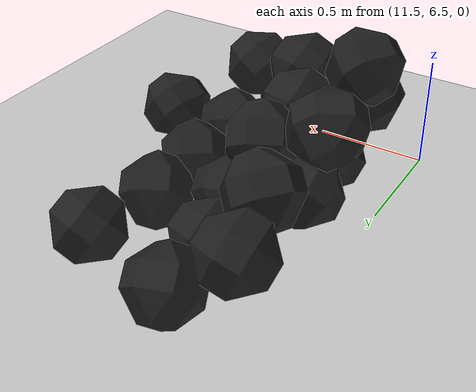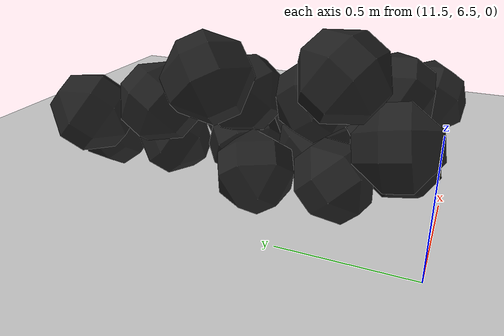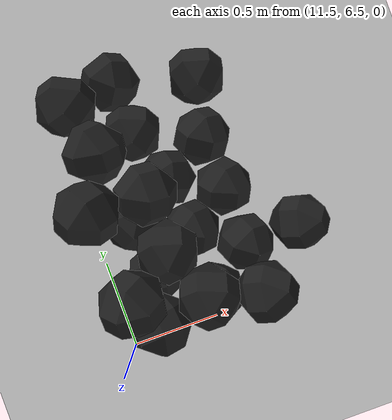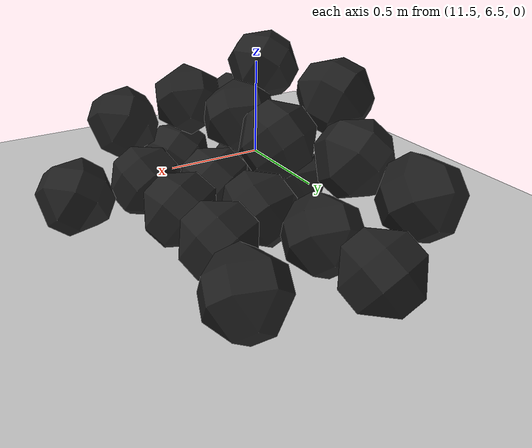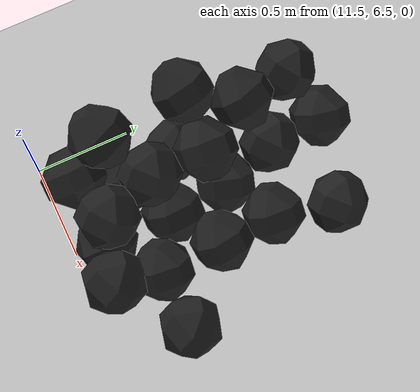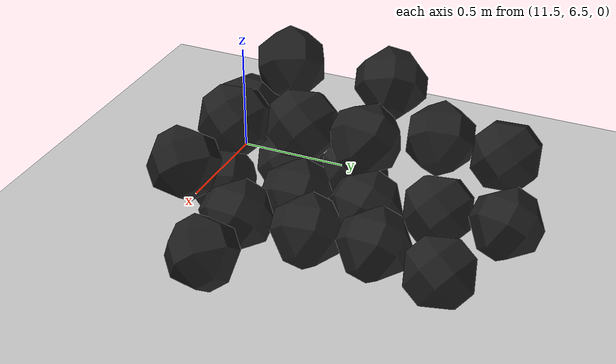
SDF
<sdf version="1.6">
 <world name="default">
  <model name="ground_plane">
   <static>1</static>
   <link name="link">
    <collision name="collision">
     <geometry><plane><normal>0 0 1</normal><size>100 100</size></plane></geometry>
     <surface><friction><ode><mu>100</mu><mu2>50</mu2></ode></friction></surface>
    </collision>
    <visual name="visual">
     <cast_shadows>0</cast_shadows>
     <geometry><plane><normal>0 0 1</normal><size>100 100</size></plane></geometry>
     <material>
      <script><uri>file://media/materials/scripts/gazebo.material</uri><name>Gazebo/Grey</name></script>
     </material>
    </visual>
   </link>
  </model>
  <model name="haoduomiantiaa_4">
   <link name="link_0">
    <inertial>
     <mass>0.2</mass>
     <inertia>
      <ixx>0.166667</ixx>
      <ixy>0</ixy>
      <ixz>0</ixz>
      <iyy>0.166667</iyy>
      <iyz>0</iyz>
      <izz>0.166667</izz>
     </inertia>
    </inertial>
    <visual name="visual">
     <geometry>
      <mesh>
       <uri>/home/oliver/catkin_ws/src/pudong_gazebo/world/stl/haoduomianti.stl</uri>
       <scale>1 1 1</scale>
      </mesh>
     </geometry>
     <material>
      <lighting>1</lighting>
      <script><uri>file://media/materials/scripts/gazebo.material</uri><name>Gazebo/Black</name></script>
      <shader type="pixel"><normal_map>__default__</normal_map></shader>
      <ambient>0.3 0.3 0.3 1</ambient>
      <diffuse>0.7 0.7 0.7 1</diffuse>
      <specular>0.01 0.01 0.01 1</specular>
      <emissive>0 0 0 1</emissive>
     </material>
    </visual>
    <collision name="collision">
     <geometry>
      <mesh>
       <uri>/home/oliver/catkin_ws/src/pudong_gazebo/world/stl/haoduomianti.stl</uri>
       <scale>1 1 1</scale>
      </mesh>
     </geometry>
     <surface>
      <friction>
       <ode><mu>1</mu><mu2>1</mu2><fdir1>0 0 0</fdir1><slip1>0</slip1><slip2>0</slip2></ode>
       <torsional>
        <coefficient>1</coefficient>
        <patch_radius>0</patch_radius>
        <surface_radius>0</surface_radius>
        <use_patch_radius>1</use_patch_radius>
        <ode><slip>0</slip></ode>
       </torsional>
      </friction>
      <bounce><restitution_coefficient>0</restitution_coefficient><threshold>1e+06</threshold></bounce>
      <contact>
       <collide_without_contact>0</collide_without_contact>
       <collide_without_contact_bitmask>1</collide_without_contact_bitmask>
       <collide_bitmask>1</collide_bitmask>
       <ode>
        <soft_cfm>0</soft_cfm>
        <soft_erp>0.2</soft_erp>
        <kp>1e+13</kp>
        <kd>1</kd>
        <max_vel>0.01</max_vel>
        <min_depth>0</min_depth>
       </ode>
       <bullet>
        <split_impulse>1</split_impulse>
        <split_impulse_penetration_threshold>-0.01</split_impulse_penetration_threshold>
        <soft_cfm>0</soft_cfm>
        <soft_erp>0.2</soft_erp>
        <kp>1e+13</kp>
        <kd>1</kd>
       </bullet>
      </contact>
     </surface>
    </collision>
   </link>
   <static>0</static>
   <pose>11.7408 7.17614 -0.115424 0.785214 -0.614577 0.474893</pose>
  </model>
  <model name="haoduomiantiaa_5">
   <link name="link_0">
    <inertial>
     <mass>0.2</mass>
     <inertia>
      <ixx>0.166667</ixx>
      <ixy>0</ixy>
      <ixz>0</ixz>
      <iyy>0.166667</iyy>
      <iyz>0</iyz>
      <izz>0.166667</izz>
     </inertia>
    </inertial>
    <visual name="visual">
     <geometry>
      <mesh>
       <uri>/home/oliver/catkin_ws/src/pudong_gazebo/world/stl/haoduomianti.stl</uri>
       <scale>1 1 1</scale>
      </mesh>
     </geometry>
     <material>
      <lighting>1</lighting>
      <script><uri>file://media/materials/scripts/gazebo.material</uri><name>Gazebo/Black</name></script>
      <shader type="pixel"><normal_map>__default__</normal_map></shader>
      <ambient>0.3 0.3 0.3 1</ambient>
      <diffuse>0.7 0.7 0.7 1</diffuse>
      <specular>0.01 0.01 0.01 1</specular>
      <emissive>0 0 0 1</emissive>
     </material>
    </visual>
    <collision name="collision">
     <geometry>
      <mesh>
       <uri>/home/oliver/catkin_ws/src/pudong_gazebo/world/stl/haoduomianti.stl</uri>
       <scale>1 1 1</scale>
      </mesh>
     </geometry>
     <surface>
      <friction>
       <ode><mu>1</mu><mu2>1</mu2><fdir1>0 0 0</fdir1><slip1>0</slip1><slip2>0</slip2></ode>
       <torsional>
        <coefficient>1</coefficient>
        <patch_radius>0</patch_radius>
        <surface_radius>0</surface_radius>
        <use_patch_radius>1</use_patch_radius>
        <ode><slip>0</slip></ode>
       </torsional>
      </friction>
      <bounce><restitution_coefficient>0</restitution_coefficient><threshold>1e+06</threshold></bounce>
      <contact>
       <collide_without_contact>0</collide_without_contact>
       <collide_without_contact_bitmask>1</collide_without_contact_bitmask>
       <collide_bitmask>1</collide_bitmask>
       <ode>
        <soft_cfm>0</soft_cfm>
        <soft_erp>0.2</soft_erp>
        <kp>1e+13</kp>
        <kd>1</kd>
        <max_vel>0.01</max_vel>
        <min_depth>0</min_depth>
       </ode>
       <bullet>
        <split_impulse>1</split_impulse>
        <split_impulse_penetration_threshold>-0.01</split_impulse_penetration_threshold>
        <soft_cfm>0</soft_cfm>
        <soft_erp>0.2</soft_erp>
        <kp>1e+13</kp>
        <kd>1</kd>
       </bullet>
      </contact>
     </surface>
    </collision>
   </link>
   <static>0</static>
   <pose>11.6442 6.91591 -0.072486 0.025367 -0.785197 -1.84865</pose>
  </model>
  <model name="haoduomiantiaa_16">
   <link name="link_0">
    <inertial>
     <mass>0.2</mass>
     <inertia>
      <ixx>0.166667</ixx>
      <ixy>0</ixy>
      <ixz>0</ixz>
      <iyy>0.166667</iyy>
      <iyz>0</iyz>
      <izz>0.166667</izz>
     </inertia>
    </inertial>
    <visual name="visual">
     <geometry>
      <mesh>
       <uri>/home/oliver/catkin_ws/src/pudong_gazebo/world/stl/haoduomianti.stl</uri>
       <scale>1 1 1</scale>
      </mesh>
     </geometry>
     <material>
      <lighting>1</lighting>
      <script><uri>file://media/materials/scripts/gazebo.material</uri><name>Gazebo/Black</name></script>
      <shader type="pixel"><normal_map>__default__</normal_map></shader>
      <ambient>0.3 0.3 0.3 1</ambient>
      <diffuse>0.7 0.7 0.7 1</diffuse>
      <specular>0.01 0.01 0.01 1</specular>
      <emissive>0 0 0 1</emissive>
     </material>
    </visual>
    <collision name="collision">
     <geometry>
      <mesh>
       <uri>/home/oliver/catkin_ws/src/pudong_gazebo/world/stl/haoduomianti.stl</uri>
       <scale>1 1 1</scale>
      </mesh>
     </geometry>
     <surface>
      <friction>
       <ode><mu>1</mu><mu2>1</mu2><fdir1>0 0 0</fdir1><slip1>0</slip1><slip2>0</slip2></ode>
       <torsional>
        <coefficient>1</coefficient>
        <patch_radius>0</patch_radius>
        <surface_radius>0</surface_radius>
        <use_patch_radius>1</use_patch_radius>
        <ode><slip>0</slip></ode>
       </torsional>
      </friction>
      <bounce><restitution_coefficient>0</restitution_coefficient><threshold>1e+06</threshold></bounce>
      <contact>
       <collide_without_contact>0</collide_without_contact>
       <collide_without_contact_bitmask>1</collide_without_contact_bitmask>
       <collide_bitmask>1</collide_bitmask>
       <ode>
        <soft_cfm>0</soft_cfm>
        <soft_erp>0.2</soft_erp>
        <kp>1e+13</kp>
        <kd>1</kd>
        <max_vel>0.01</max_vel>
        <min_depth>0</min_depth>
       </ode>
       <bullet>
        <split_impulse>1</split_impulse>
        <split_impulse_penetration_threshold>-0.01</split_impulse_penetration_threshold>
        <soft_cfm>0</soft_cfm>
        <soft_erp>0.2</soft_erp>
        <kp>1e+13</kp>
        <kd>1</kd>
       </bullet>
      </contact>
     </surface>
    </collision>
   </link>
   <static>0</static>
   <pose>11.7861 6.77265 0.121639 0.164646 -0.433724 -3.10475</pose>
  </model>
  <model name="haoduomiantiaa_22">
   <link name="link_0">
    <inertial>
     <mass>0.2</mass>
     <inertia>
      <ixx>0.166667</ixx>
      <ixy>0</ixy>
      <ixz>0</ixz>
      <iyy>0.166667</iyy>
      <iyz>0</iyz>
      <izz>0.166667</izz>
     </inertia>
    </inertial>
    <visual name="visual">
     <geometry>
      <mesh>
       <uri>/home/oliver/catkin_ws/src/pudong_gazebo/world/stl/haoduomianti.stl</uri>
       <scale>1 1 1</scale>
      </mesh>
     </geometry>
     <material>
      <lighting>1</lighting>
      <script><uri>file://media/materials/scripts/gazebo.material</uri><name>Gazebo/Black</name></script>
      <shader type="pixel"><normal_map>__default__</normal_map></shader>
      <ambient>0.3 0.3 0.3 1</ambient>
      <diffuse>0.7 0.7 0.7 1</diffuse>
      <specular>0.01 0.01 0.01 1</specular>
      <emissive>0 0 0 1</emissive>
     </material>
    </visual>
    <collision name="collision">
     <geometry>
      <mesh>
       <uri>/home/oliver/catkin_ws/src/pudong_gazebo/world/stl/haoduomianti.stl</uri>
       <scale>1 1 1</scale>
      </mesh>
     </geometry>
     <surface>
      <friction>
       <ode><mu>1</mu><mu2>1</mu2><fdir1>0 0 0</fdir1><slip1>0</slip1><slip2>0</slip2></ode>
       <torsional>
        <coefficient>1</coefficient>
        <patch_radius>0</patch_radius>
        <surface_radius>0</surface_radius>
        <use_patch_radius>1</use_patch_radius>
        <ode><slip>0</slip></ode>
       </torsional>
      </friction>
      <bounce><restitution_coefficient>0</restitution_coefficient><threshold>1e+06</threshold></bounce>
      <contact>
       <collide_without_contact>0</collide_without_contact>
       <collide_without_contact_bitmask>1</collide_without_contact_bitmask>
       <collide_bitmask>1</collide_bitmask>
       <ode>
        <soft_cfm>0</soft_cfm>
        <soft_erp>0.2</soft_erp>
        <kp>1e+13</kp>
        <kd>1</kd>
        <max_vel>0.01</max_vel>
        <min_depth>0</min_depth>
       </ode>
       <bullet>
        <split_impulse>1</split_impulse>
        <split_impulse_penetration_threshold>-0.01</split_impulse_penetration_threshold>
        <soft_cfm>0</soft_cfm>
        <soft_erp>0.2</soft_erp>
        <kp>1e+13</kp>
        <kd>1</kd>
       </bullet>
      </contact>
     </surface>
    </collision>
   </link>
   <static>0</static>
   <pose>12.0454 6.66537 -0.115487 0.785401 -0.615459 -0.720537</pose>
  </model>
  <model name="haoduomiantiaa_24">
   <link name="link_0">
    <inertial>
     <mass>0.2</mass>
     <inertia>
      <ixx>0.166667</ixx>
      <ixy>0</ixy>
      <ixz>0</ixz>
      <iyy>0.166667</iyy>
      <iyz>0</iyz>
      <izz>0.166667</izz>
     </inertia>
    </inertial>
    <visual name="visual">
     <geometry>
      <mesh>
       <uri>/home/oliver/catkin_ws/src/pudong_gazebo/world/stl/haoduomianti.stl</uri>
       <scale>1 1 1</scale>
      </mesh>
     </geometry>
     <material>
      <lighting>1</lighting>
      <script><uri>file://media/materials/scripts/gazebo.material</uri><name>Gazebo/Black</name></script>
      <shader type="pixel"><normal_map>__default__</normal_map></shader>
      <ambient>0.3 0.3 0.3 1</ambient>
      <diffuse>0.7 0.7 0.7 1</diffuse>
      <specular>0.01 0.01 0.01 1</specular>
      <emissive>0 0 0 1</emissive>
     </material>
    </visual>
    <collision name="collision">
     <geometry>
      <mesh>
       <uri>/home/oliver/catkin_ws/src/pudong_gazebo/world/stl/haoduomianti.stl</uri>
       <scale>1 1 1</scale>
      </mesh>
     </geometry>
     <surface>
      <friction>
       <ode><mu>1</mu><mu2>1</mu2><fdir1>0 0 0</fdir1><slip1>0</slip1><slip2>0</slip2></ode>
       <torsional>
        <coefficient>1</coefficient>
        <patch_radius>0</patch_radius>
        <surface_radius>0</surface_radius>
        <use_patch_radius>1</use_patch_radius>
        <ode><slip>0</slip></ode>
       </torsional>
      </friction>
      <bounce><restitution_coefficient>0</restitution_coefficient><threshold>1e+06</threshold></bounce>
      <contact>
       <collide_without_contact>0</collide_without_contact>
       <collide_without_contact_bitmask>1</collide_without_contact_bitmask>
       <collide_bitmask>1</collide_bitmask>
       <ode>
        <soft_cfm>0</soft_cfm>
        <soft_erp>0.2</soft_erp>
        <kp>1e+13</kp>
        <kd>1</kd>
        <max_vel>0.01</max_vel>
        <min_depth>0</min_depth>
       </ode>
       <bullet>
        <split_impulse>1</split_impulse>
        <split_impulse_penetration_threshold>-0.01</split_impulse_penetration_threshold>
        <soft_cfm>0</soft_cfm>
        <soft_erp>0.2</soft_erp>
        <kp>1e+13</kp>
        <kd>1</kd>
       </bullet>
      </contact>
     </surface>
    </collision>
   </link>
   <static>0</static>
   <pose>12.2888 6.86401 -0.118097 0.783884 -0.616 -1.1434</pose>
  </model>
  <model name="haoduomiantiaa_44">
   <link name="link_0">
    <inertial>
     <mass>0.2</mass>
     <inertia>
      <ixx>0.166667</ixx>
      <ixy>0</ixy>
      <ixz>0</ixz>
      <iyy>0.166667</iyy>
      <iyz>0</iyz>
      <izz>0.166667</izz>
     </inertia>
    </inertial>
    <visual name="visual">
     <geometry>
      <mesh>
       <uri>/home/oliver/catkin_ws/src/pudong_gazebo/world/stl/haoduomianti.stl</uri>
       <scale>1 1 1</scale>
      </mesh>
     </geometry>
     <material>
      <lighting>1</lighting>
      <script><uri>file://media/materials/scripts/gazebo.material</uri><name>Gazebo/Black</name></script>
      <shader type="pixel"><normal_map>__default__</normal_map></shader>
      <ambient>0.3 0.3 0.3 1</ambient>
      <diffuse>0.7 0.7 0.7 1</diffuse>
      <specular>0.01 0.01 0.01 1</specular>
      <emissive>0 0 0 1</emissive>
     </material>
    </visual>
    <collision name="collision">
     <geometry>
      <mesh>
       <uri>/home/oliver/catkin_ws/src/pudong_gazebo/world/stl/haoduomianti.stl</uri>
       <scale>1 1 1</scale>
      </mesh>
     </geometry>
     <surface>
      <friction>
       <ode><mu>1</mu><mu2>1</mu2><fdir1>0 0 0</fdir1><slip1>0</slip1><slip2>0</slip2></ode>
       <torsional>
        <coefficient>1</coefficient>
        <patch_radius>0</patch_radius>
        <surface_radius>0</surface_radius>
        <use_patch_radius>1</use_patch_radius>
        <ode><slip>0</slip></ode>
       </torsional>
      </friction>
      <bounce><restitution_coefficient>0</restitution_coefficient><threshold>1e+06</threshold></bounce>
      <contact>
       <collide_without_contact>0</collide_without_contact>
       <collide_without_contact_bitmask>1</collide_without_contact_bitmask>
       <collide_bitmask>1</collide_bitmask>
       <ode>
        <soft_cfm>0</soft_cfm>
        <soft_erp>0.2</soft_erp>
        <kp>1e+13</kp>
        <kd>1</kd>
        <max_vel>0.01</max_vel>
        <min_depth>0</min_depth>
       </ode>
       <bullet>
        <split_impulse>1</split_impulse>
        <split_impulse_penetration_threshold>-0.01</split_impulse_penetration_threshold>
        <soft_cfm>0</soft_cfm>
        <soft_erp>0.2</soft_erp>
        <kp>1e+13</kp>
        <kd>1</kd>
       </bullet>
      </contact>
     </surface>
    </collision>
   </link>
   <static>0</static>
   <pose>12.2616 7.48922 -0.115391 0.785785 -0.615727 3.09158</pose>
  </model>
  <model name="haoduomiantiaa_50">
   <link name="link_0">
    <inertial>
     <mass>0.2</mass>
     <inertia>
      <ixx>0.166667</ixx>
      <ixy>0</ixy>
      <ixz>0</ixz>
      <iyy>0.166667</iyy>
      <iyz>0</iyz>
      <izz>0.166667</izz>
     </inertia>
    </inertial>
    <visual name="visual">
     <geometry>
      <mesh>
       <uri>/home/oliver/catkin_ws/src/pudong_gazebo/world/stl/haoduomianti.stl</uri>
       <scale>1 1 1</scale>
      </mesh>
     </geometry>
     <material>
      <lighting>1</lighting>
      <script><uri>file://media/materials/scripts/gazebo.material</uri><name>Gazebo/Black</name></script>
      <shader type="pixel"><normal_map>__default__</normal_map></shader>
      <ambient>0.3 0.3 0.3 1</ambient>
      <diffuse>0.7 0.7 0.7 1</diffuse>
      <specular>0.01 0.01 0.01 1</specular>
      <emissive>0 0 0 1</emissive>
     </material>
    </visual>
    <collision name="collision">
     <geometry>
      <mesh>
       <uri>/home/oliver/catkin_ws/src/pudong_gazebo/world/stl/haoduomianti.stl</uri>
       <scale>1 1 1</scale>
      </mesh>
     </geometry>
     <surface>
      <friction>
       <ode><mu>1</mu><mu2>1</mu2><fdir1>0 0 0</fdir1><slip1>0</slip1><slip2>0</slip2></ode>
       <torsional>
        <coefficient>1</coefficient>
        <patch_radius>0</patch_radius>
        <surface_radius>0</surface_radius>
        <use_patch_radius>1</use_patch_radius>
        <ode><slip>0</slip></ode>
       </torsional>
      </friction>
      <bounce><restitution_coefficient>0</restitution_coefficient><threshold>1e+06</threshold></bounce>
      <contact>
       <collide_without_contact>0</collide_without_contact>
       <collide_without_contact_bitmask>1</collide_without_contact_bitmask>
       <collide_bitmask>1</collide_bitmask>
       <ode>
        <soft_cfm>0</soft_cfm>
        <soft_erp>0.2</soft_erp>
        <kp>1e+13</kp>
        <kd>1</kd>
        <max_vel>0.01</max_vel>
        <min_depth>0</min_depth>
       </ode>
       <bullet>
        <split_impulse>1</split_impulse>
        <split_impulse_penetration_threshold>-0.01</split_impulse_penetration_threshold>
        <soft_cfm>0</soft_cfm>
        <soft_erp>0.2</soft_erp>
        <kp>1e+13</kp>
        <kd>1</kd>
       </bullet>
      </contact>
     </surface>
    </collision>
   </link>
   <static>0</static>
   <pose>11.7348 7.54176 0.127448 0.687983 -0.53336 1.4309</pose>
  </model>
  <model name="haoduomiantiaa_51">
   <link name="link_0">
    <inertial>
     <mass>0.2</mass>
     <inertia>
      <ixx>0.166667</ixx>
      <ixy>0</ixy>
      <ixz>0</ixz>
      <iyy>0.166667</iyy>
      <iyz>0</iyz>
      <izz>0.166667</izz>
     </inertia>
    </inertial>
    <visual name="visual">
     <geometry>
      <mesh>
       <uri>/home/oliver/catkin_ws/src/pudong_gazebo/world/stl/haoduomianti.stl</uri>
       <scale>1 1 1</scale>
      </mesh>
     </geometry>
     <material>
      <lighting>1</lighting>
      <script><uri>file://media/materials/scripts/gazebo.material</uri><name>Gazebo/Black</name></script>
      <shader type="pixel"><normal_map>__default__</normal_map></shader>
      <ambient>0.3 0.3 0.3 1</ambient>
      <diffuse>0.7 0.7 0.7 1</diffuse>
      <specular>0.01 0.01 0.01 1</specular>
      <emissive>0 0 0 1</emissive>
     </material>
    </visual>
    <collision name="collision">
     <geometry>
      <mesh>
       <uri>/home/oliver/catkin_ws/src/pudong_gazebo/world/stl/haoduomianti.stl</uri>
       <scale>1 1 1</scale>
      </mesh>
     </geometry>
     <surface>
      <friction>
       <ode><mu>1</mu><mu2>1</mu2><fdir1>0 0 0</fdir1><slip1>0</slip1><slip2>0</slip2></ode>
       <torsional>
        <coefficient>1</coefficient>
        <patch_radius>0</patch_radius>
        <surface_radius>0</surface_radius>
        <use_patch_radius>1</use_patch_radius>
        <ode><slip>0</slip></ode>
       </torsional>
      </friction>
      <bounce><restitution_coefficient>0</restitution_coefficient><threshold>1e+06</threshold></bounce>
      <contact>
       <collide_without_contact>0</collide_without_contact>
       <collide_without_contact_bitmask>1</collide_without_contact_bitmask>
       <collide_bitmask>1</collide_bitmask>
       <ode>
        <soft_cfm>0</soft_cfm>
        <soft_erp>0.2</soft_erp>
        <kp>1e+13</kp>
        <kd>1</kd>
        <max_vel>0.01</max_vel>
        <min_depth>0</min_depth>
       </ode>
       <bullet>
        <split_impulse>1</split_impulse>
        <split_impulse_penetration_threshold>-0.01</split_impulse_penetration_threshold>
        <soft_cfm>0</soft_cfm>
        <soft_erp>0.2</soft_erp>
        <kp>1e+13</kp>
        <kd>1</kd>
       </bullet>
      </contact>
     </surface>
    </collision>
   </link>
   <static>0</static>
   <pose>12.0287 7.01456 -0.112279 0.785731 -0.544033 1.11328</pose>
  </model>
  <model name="haoduomiantiaa_55">
   <link name="link_0">
    <inertial>
     <mass>0.2</mass>
     <inertia>
      <ixx>0.166667</ixx>
      <ixy>0</ixy>
      <ixz>0</ixz>
      <iyy>0.166667</iyy>
      <iyz>0</iyz>
      <izz>0.166667</izz>
     </inertia>
    </inertial>
    <visual name="visual">
     <geometry>
      <mesh>
       <uri>/home/oliver/catkin_ws/src/pudong_gazebo/world/stl/haoduomianti.stl</uri>
       <scale>1 1 1</scale>
      </mesh>
     </geometry>
     <material>
      <lighting>1</lighting>
      <script><uri>file://media/materials/scripts/gazebo.material</uri><name>Gazebo/Black</name></script>
      <shader type="pixel"><normal_map>__default__</normal_map></shader>
      <ambient>0.3 0.3 0.3 1</ambient>
      <diffuse>0.7 0.7 0.7 1</diffuse>
      <specular>0.01 0.01 0.01 1</specular>
      <emissive>0 0 0 1</emissive>
     </material>
    </visual>
    <collision name="collision">
     <geometry>
      <mesh>
       <uri>/home/oliver/catkin_ws/src/pudong_gazebo/world/stl/haoduomianti.stl</uri>
       <scale>1 1 1</scale>
      </mesh>
     </geometry>
     <surface>
      <friction>
       <ode><mu>1</mu><mu2>1</mu2><fdir1>0 0 0</fdir1><slip1>0</slip1><slip2>0</slip2></ode>
       <torsional>
        <coefficient>1</coefficient>
        <patch_radius>0</patch_radius>
        <surface_radius>0</surface_radius>
        <use_patch_radius>1</use_patch_radius>
        <ode><slip>0</slip></ode>
       </torsional>
      </friction>
      <bounce><restitution_coefficient>0</restitution_coefficient><threshold>1e+06</threshold></bounce>
      <contact>
       <collide_without_contact>0</collide_without_contact>
       <collide_without_contact_bitmask>1</collide_without_contact_bitmask>
       <collide_bitmask>1</collide_bitmask>
       <ode>
        <soft_cfm>0</soft_cfm>
        <soft_erp>0.2</soft_erp>
        <kp>1e+13</kp>
        <kd>1</kd>
        <max_vel>0.01</max_vel>
        <min_depth>0</min_depth>
       </ode>
       <bullet>
        <split_impulse>1</split_impulse>
        <split_impulse_penetration_threshold>-0.01</split_impulse_penetration_threshold>
        <soft_cfm>0</soft_cfm>
        <soft_erp>0.2</soft_erp>
        <kp>1e+13</kp>
        <kd>1</kd>
       </bullet>
      </contact>
     </surface>
    </collision>
   </link>
   <static>0</static>
   <pose>12.3466 7.81081 -0.115361 0.786585 -0.614487 2.33295</pose>
  </model>
  <model name="haoduomiantiaa_62">
   <link name="link_0">
    <inertial>
     <mass>0.2</mass>
     <inertia>
      <ixx>0.166667</ixx>
      <ixy>0</ixy>
      <ixz>0</ixz>
      <iyy>0.166667</iyy>
      <iyz>0</iyz>
      <izz>0.166667</izz>
     </inertia>
    </inertial>
    <visual name="visual">
     <geometry>
      <mesh>
       <uri>/home/oliver/catkin_ws/src/pudong_gazebo/world/stl/haoduomianti.stl</uri>
       <scale>1 1 1</scale>
      </mesh>
     </geometry>
     <material>
      <lighting>1</lighting>
      <script><uri>file://media/materials/scripts/gazebo.material</uri><name>Gazebo/Black</name></script>
      <shader type="pixel"><normal_map>__default__</normal_map></shader>
      <ambient>0.3 0.3 0.3 1</ambient>
      <diffuse>0.7 0.7 0.7 1</diffuse>
      <specular>0.01 0.01 0.01 1</specular>
      <emissive>0 0 0 1</emissive>
     </material>
    </visual>
    <collision name="collision">
     <geometry>
      <mesh>
       <uri>/home/oliver/catkin_ws/src/pudong_gazebo/world/stl/haoduomianti.stl</uri>
       <scale>1 1 1</scale>
      </mesh>
     </geometry>
     <surface>
      <friction>
       <ode><mu>1</mu><mu2>1</mu2><fdir1>0 0 0</fdir1><slip1>0</slip1><slip2>0</slip2></ode>
       <torsional>
        <coefficient>1</coefficient>
        <patch_radius>0</patch_radius>
        <surface_radius>0</surface_radius>
        <use_patch_radius>1</use_patch_radius>
        <ode><slip>0</slip></ode>
       </torsional>
      </friction>
      <bounce><restitution_coefficient>0</restitution_coefficient><threshold>1e+06</threshold></bounce>
      <contact>
       <collide_without_contact>0</collide_without_contact>
       <collide_without_contact_bitmask>1</collide_without_contact_bitmask>
       <collide_bitmask>1</collide_bitmask>
       <ode>
        <soft_cfm>0</soft_cfm>
        <soft_erp>0.2</soft_erp>
        <kp>1e+13</kp>
        <kd>1</kd>
        <max_vel>0.01</max_vel>
        <min_depth>0</min_depth>
       </ode>
       <bullet>
        <split_impulse>1</split_impulse>
        <split_impulse_penetration_threshold>-0.01</split_impulse_penetration_threshold>
        <soft_cfm>0</soft_cfm>
        <soft_erp>0.2</soft_erp>
        <kp>1e+13</kp>
        <kd>1</kd>
       </bullet>
      </contact>
     </surface>
    </collision>
   </link>
   <static>0</static>
   <pose>11.8792 7.63223 -0.109645 0.644005 -0.674527 -1.85062</pose>
  </model>
  <model name="haoduomiantiaa_76">
   <link name="link_0">
    <inertial>
     <mass>0.2</mass>
     <inertia>
      <ixx>0.166667</ixx>
      <ixy>0</ixy>
      <ixz>0</ixz>
      <iyy>0.166667</iyy>
      <iyz>0</iyz>
      <izz>0.166667</izz>
     </inertia>
    </inertial>
    <visual name="visual">
     <geometry>
      <mesh>
       <uri>/home/oliver/catkin_ws/src/pudong_gazebo/world/stl/haoduomianti.stl</uri>
       <scale>1 1 1</scale>
      </mesh>
     </geometry>
     <material>
      <lighting>1</lighting>
      <script><uri>file://media/materials/scripts/gazebo.material</uri><name>Gazebo/Black</name></script>
      <shader type="pixel"><normal_map>__default__</normal_map></shader>
      <ambient>0.3 0.3 0.3 1</ambient>
      <diffuse>0.7 0.7 0.7 1</diffuse>
      <specular>0.01 0.01 0.01 1</specular>
      <emissive>0 0 0 1</emissive>
     </material>
    </visual>
    <collision name="collision">
     <geometry>
      <mesh>
       <uri>/home/oliver/catkin_ws/src/pudong_gazebo/world/stl/haoduomianti.stl</uri>
       <scale>1 1 1</scale>
      </mesh>
     </geometry>
     <surface>
      <friction>
       <ode><mu>1</mu><mu2>1</mu2><fdir1>0 0 0</fdir1><slip1>0</slip1><slip2>0</slip2></ode>
       <torsional>
        <coefficient>1</coefficient>
        <patch_radius>0</patch_radius>
        <surface_radius>0</surface_radius>
        <use_patch_radius>1</use_patch_radius>
        <ode><slip>0</slip></ode>
       </torsional>
      </friction>
      <bounce><restitution_coefficient>0</restitution_coefficient><threshold>1e+06</threshold></bounce>
      <contact>
       <collide_without_contact>0</collide_without_contact>
       <collide_without_contact_bitmask>1</collide_without_contact_bitmask>
       <collide_bitmask>1</collide_bitmask>
       <ode>
        <soft_cfm>0</soft_cfm>
        <soft_erp>0.2</soft_erp>
        <kp>1e+13</kp>
        <kd>1</kd>
        <max_vel>0.01</max_vel>
        <min_depth>0</min_depth>
       </ode>
       <bullet>
        <split_impulse>1</split_impulse>
        <split_impulse_penetration_threshold>-0.01</split_impulse_penetration_threshold>
        <soft_cfm>0</soft_cfm>
        <soft_erp>0.2</soft_erp>
        <kp>1e+13</kp>
        <kd>1</kd>
       </bullet>
      </contact>
     </surface>
    </collision>
   </link>
   <static>0</static>
   <pose>11.8908 7.93867 -0.115535 0.785388 -0.615353 -1.24366</pose>
  </model>
  <model name="haoduomiantiaa_80">
   <link name="link_0">
    <inertial>
     <mass>0.2</mass>
     <inertia>
      <ixx>0.166667</ixx>
      <ixy>0</ixy>
      <ixz>0</ixz>
      <iyy>0.166667</iyy>
      <iyz>0</iyz>
      <izz>0.166667</izz>
     </inertia>
    </inertial>
    <visual name="visual">
     <geometry>
      <mesh>
       <uri>/home/oliver/catkin_ws/src/pudong_gazebo/world/stl/haoduomianti.stl</uri>
       <scale>1 1 1</scale>
      </mesh>
     </geometry>
     <material>
      <lighting>1</lighting>
      <script><uri>file://media/materials/scripts/gazebo.material</uri><name>Gazebo/Black</name></script>
      <shader type="pixel"><normal_map>__default__</normal_map></shader>
      <ambient>0.3 0.3 0.3 1</ambient>
      <diffuse>0.7 0.7 0.7 1</diffuse>
      <specular>0.01 0.01 0.01 1</specular>
      <emissive>0 0 0 1</emissive>
     </material>
    </visual>
    <collision name="collision">
     <geometry>
      <mesh>
       <uri>/home/oliver/catkin_ws/src/pudong_gazebo/world/stl/haoduomianti.stl</uri>
       <scale>1 1 1</scale>
      </mesh>
     </geometry>
     <surface>
      <friction>
       <ode><mu>1</mu><mu2>1</mu2><fdir1>0 0 0</fdir1><slip1>0</slip1><slip2>0</slip2></ode>
       <torsional>
        <coefficient>1</coefficient>
        <patch_radius>0</patch_radius>
        <surface_radius>0</surface_radius>
        <use_patch_radius>1</use_patch_radius>
        <ode><slip>0</slip></ode>
       </torsional>
      </friction>
      <bounce><restitution_coefficient>0</restitution_coefficient><threshold>1e+06</threshold></bounce>
      <contact>
       <collide_without_contact>0</collide_without_contact>
       <collide_without_contact_bitmask>1</collide_without_contact_bitmask>
       <collide_bitmask>1</collide_bitmask>
       <ode>
        <soft_cfm>0</soft_cfm>
        <soft_erp>0.2</soft_erp>
        <kp>1e+13</kp>
        <kd>1</kd>
        <max_vel>0.01</max_vel>
        <min_depth>0</min_depth>
       </ode>
       <bullet>
        <split_impulse>1</split_impulse>
        <split_impulse_penetration_threshold>-0.01</split_impulse_penetration_threshold>
        <soft_cfm>0</soft_cfm>
        <soft_erp>0.2</soft_erp>
        <kp>1e+13</kp>
        <kd>1</kd>
       </bullet>
      </contact>
     </surface>
    </collision>
   </link>
   <static>0</static>
   <pose>11.8798 6.98383 0.153485 0.836852 -0.631851 2.28698</pose>
  </model>
  <model name="haoduomiantiaa_105">
   <link name="link_0">
    <inertial>
     <mass>0.2</mass>
     <inertia>
      <ixx>0.166667</ixx>
      <ixy>0</ixy>
      <ixz>0</ixz>
      <iyy>0.166667</iyy>
      <iyz>0</iyz>
      <izz>0.166667</izz>
     </inertia>
    </inertial>
    <visual name="visual">
     <geometry>
      <mesh>
       <uri>/home/oliver/catkin_ws/src/pudong_gazebo/world/stl/haoduomianti.stl</uri>
       <scale>1 1 1</scale>
      </mesh>
     </geometry>
     <material>
      <lighting>1</lighting>
      <script><uri>file://media/materials/scripts/gazebo.material</uri><name>Gazebo/Black</name></script>
      <shader type="pixel"><normal_map>__default__</normal_map></shader>
      <ambient>0.3 0.3 0.3 1</ambient>
      <diffuse>0.7 0.7 0.7 1</diffuse>
      <specular>0.01 0.01 0.01 1</specular>
      <emissive>0 0 0 1</emissive>
     </material>
    </visual>
    <collision name="collision">
     <geometry>
      <mesh>
       <uri>/home/oliver/catkin_ws/src/pudong_gazebo/world/stl/haoduomianti.stl</uri>
       <scale>1 1 1</scale>
      </mesh>
     </geometry>
     <surface>
      <friction>
       <ode><mu>1</mu><mu2>1</mu2><fdir1>0 0 0</fdir1><slip1>0</slip1><slip2>0</slip2></ode>
       <torsional>
        <coefficient>1</coefficient>
        <patch_radius>0</patch_radius>
        <surface_radius>0</surface_radius>
        <use_patch_radius>1</use_patch_radius>
        <ode><slip>0</slip></ode>
       </torsional>
      </friction>
      <bounce><restitution_coefficient>0</restitution_coefficient><threshold>1e+06</threshold></bounce>
      <contact>
       <collide_without_contact>0</collide_without_contact>
       <collide_without_contact_bitmask>1</collide_without_contact_bitmask>
       <collide_bitmask>1</collide_bitmask>
       <ode>
        <soft_cfm>0</soft_cfm>
        <soft_erp>0.2</soft_erp>
        <kp>1e+13</kp>
        <kd>1</kd>
        <max_vel>0.01</max_vel>
        <min_depth>0</min_depth>
       </ode>
       <bullet>
        <split_impulse>1</split_impulse>
        <split_impulse_penetration_threshold>-0.01</split_impulse_penetration_threshold>
        <soft_cfm>0</soft_cfm>
        <soft_erp>0.2</soft_erp>
        <kp>1e+13</kp>
        <kd>1</kd>
       </bullet>
      </contact>
     </surface>
    </collision>
   </link>
   <static>0</static>
   <pose>12.2828 6.60317 0.083389 0.830588 -0.56682 1.90801</pose>
  </model>
  <model name="haoduomiantiaa_108">
   <link name="link_0">
    <inertial>
     <mass>0.2</mass>
     <inertia>
      <ixx>0.166667</ixx>
      <ixy>0</ixy>
      <ixz>0</ixz>
      <iyy>0.166667</iyy>
      <iyz>0</iyz>
      <izz>0.166667</izz>
     </inertia>
    </inertial>
    <visual name="visual">
     <geometry>
      <mesh>
       <uri>/home/oliver/catkin_ws/src/pudong_gazebo/world/stl/haoduomianti.stl</uri>
       <scale>1 1 1</scale>
      </mesh>
     </geometry>
     <material>
      <lighting>1</lighting>
      <script><uri>file://media/materials/scripts/gazebo.material</uri><name>Gazebo/Black</name></script>
      <shader type="pixel"><normal_map>__default__</normal_map></shader>
      <ambient>0.3 0.3 0.3 1</ambient>
      <diffuse>0.7 0.7 0.7 1</diffuse>
      <specular>0.01 0.01 0.01 1</specular>
      <emissive>0 0 0 1</emissive>
     </material>
    </visual>
    <collision name="collision">
     <geometry>
      <mesh>
       <uri>/home/oliver/catkin_ws/src/pudong_gazebo/world/stl/haoduomianti.stl</uri>
       <scale>1 1 1</scale>
      </mesh>
     </geometry>
     <surface>
      <friction>
       <ode><mu>1</mu><mu2>1</mu2><fdir1>0 0 0</fdir1><slip1>0</slip1><slip2>0</slip2></ode>
       <torsional>
        <coefficient>1</coefficient>
        <patch_radius>0</patch_radius>
        <surface_radius>0</surface_radius>
        <use_patch_radius>1</use_patch_radius>
        <ode><slip>0</slip></ode>
       </torsional>
      </friction>
      <bounce><restitution_coefficient>0</restitution_coefficient><threshold>1e+06</threshold></bounce>
      <contact>
       <collide_without_contact>0</collide_without_contact>
       <collide_without_contact_bitmask>1</collide_without_contact_bitmask>
       <collide_bitmask>1</collide_bitmask>
       <ode>
        <soft_cfm>0</soft_cfm>
        <soft_erp>0.2</soft_erp>
        <kp>1e+13</kp>
        <kd>1</kd>
        <max_vel>0.01</max_vel>
        <min_depth>0</min_depth>
       </ode>
       <bullet>
        <split_impulse>1</split_impulse>
        <split_impulse_penetration_threshold>-0.01</split_impulse_penetration_threshold>
        <soft_cfm>0</soft_cfm>
        <soft_erp>0.2</soft_erp>
        <kp>1e+13</kp>
        <kd>1</kd>
       </bullet>
      </contact>
     </surface>
    </collision>
   </link>
   <static>0</static>
   <pose>11.656 6.83728 0.321598 0.748383 -0.559572 -0.615857</pose>
  </model>
  <model name="haoduomiantiaa_111">
   <link name="link_0">
    <inertial>
     <mass>0.2</mass>
     <inertia>
      <ixx>0.166667</ixx>
      <ixy>0</ixy>
      <ixz>0</ixz>
      <iyy>0.166667</iyy>
      <iyz>0</iyz>
      <izz>0.166667</izz>
     </inertia>
    </inertial>
    <visual name="visual">
     <geometry>
      <mesh>
       <uri>/home/oliver/catkin_ws/src/pudong_gazebo/world/stl/haoduomianti.stl</uri>
       <scale>1 1 1</scale>
      </mesh>
     </geometry>
     <material>
      <lighting>1</lighting>
      <script><uri>file://media/materials/scripts/gazebo.material</uri><name>Gazebo/Black</name></script>
      <shader type="pixel"><normal_map>__default__</normal_map></shader>
      <ambient>0.3 0.3 0.3 1</ambient>
      <diffuse>0.7 0.7 0.7 1</diffuse>
      <specular>0.01 0.01 0.01 1</specular>
      <emissive>0 0 0 1</emissive>
     </material>
    </visual>
    <collision name="collision">
     <geometry>
      <mesh>
       <uri>/home/oliver/catkin_ws/src/pudong_gazebo/world/stl/haoduomianti.stl</uri>
       <scale>1 1 1</scale>
      </mesh>
     </geometry>
     <surface>
      <friction>
       <ode><mu>1</mu><mu2>1</mu2><fdir1>0 0 0</fdir1><slip1>0</slip1><slip2>0</slip2></ode>
       <torsional>
        <coefficient>1</coefficient>
        <patch_radius>0</patch_radius>
        <surface_radius>0</surface_radius>
        <use_patch_radius>1</use_patch_radius>
        <ode><slip>0</slip></ode>
       </torsional>
      </friction>
      <bounce><restitution_coefficient>0</restitution_coefficient><threshold>1e+06</threshold></bounce>
      <contact>
       <collide_without_contact>0</collide_without_contact>
       <collide_without_contact_bitmask>1</collide_without_contact_bitmask>
       <collide_bitmask>1</collide_bitmask>
       <ode>
        <soft_cfm>0</soft_cfm>
        <soft_erp>0.2</soft_erp>
        <kp>1e+13</kp>
        <kd>1</kd>
        <max_vel>0.01</max_vel>
        <min_depth>0</min_depth>
       </ode>
       <bullet>
        <split_impulse>1</split_impulse>
        <split_impulse_penetration_threshold>-0.01</split_impulse_penetration_threshold>
        <soft_cfm>0</soft_cfm>
        <soft_erp>0.2</soft_erp>
        <kp>1e+13</kp>
        <kd>1</kd>
       </bullet>
      </contact>
     </surface>
    </collision>
   </link>
   <static>0</static>
   <pose>12.0003 7.33763 -0.115361 0.801877 -0.62314 2.85231</pose>
  </model>
  <model name="haoduomiantiaa_115">
   <link name="link_0">
    <inertial>
     <mass>0.2</mass>
     <inertia>
      <ixx>0.166667</ixx>
      <ixy>0</ixy>
      <ixz>0</ixz>
      <iyy>0.166667</iyy>
      <iyz>0</iyz>
      <izz>0.166667</izz>
     </inertia>
    </inertial>
    <visual name="visual">
     <geometry>
      <mesh>
       <uri>/home/oliver/catkin_ws/src/pudong_gazebo/world/stl/haoduomianti.stl</uri>
       <scale>1 1 1</scale>
      </mesh>
     </geometry>
     <material>
      <lighting>1</lighting>
      <script><uri>file://media/materials/scripts/gazebo.material</uri><name>Gazebo/Black</name></script>
      <shader type="pixel"><normal_map>__default__</normal_map></shader>
      <ambient>0.3 0.3 0.3 1</ambient>
      <diffuse>0.7 0.7 0.7 1</diffuse>
      <specular>0.01 0.01 0.01 1</specular>
      <emissive>0 0 0 1</emissive>
     </material>
    </visual>
    <collision name="collision">
     <geometry>
      <mesh>
       <uri>/home/oliver/catkin_ws/src/pudong_gazebo/world/stl/haoduomianti.stl</uri>
       <scale>1 1 1</scale>
      </mesh>
     </geometry>
     <surface>
      <friction>
       <ode><mu>1</mu><mu2>1</mu2><fdir1>0 0 0</fdir1><slip1>0</slip1><slip2>0</slip2></ode>
       <torsional>
        <coefficient>1</coefficient>
        <patch_radius>0</patch_radius>
        <surface_radius>0</surface_radius>
        <use_patch_radius>1</use_patch_radius>
        <ode><slip>0</slip></ode>
       </torsional>
      </friction>
      <bounce><restitution_coefficient>0</restitution_coefficient><threshold>1e+06</threshold></bounce>
      <contact>
       <collide_without_contact>0</collide_without_contact>
       <collide_without_contact_bitmask>1</collide_without_contact_bitmask>
       <collide_bitmask>1</collide_bitmask>
       <ode>
        <soft_cfm>0</soft_cfm>
        <soft_erp>0.2</soft_erp>
        <kp>1e+13</kp>
        <kd>1</kd>
        <max_vel>0.01</max_vel>
        <min_depth>0</min_depth>
       </ode>
       <bullet>
        <split_impulse>1</split_impulse>
        <split_impulse_penetration_threshold>-0.01</split_impulse_penetration_threshold>
        <soft_cfm>0</soft_cfm>
        <soft_erp>0.2</soft_erp>
        <kp>1e+13</kp>
        <kd>1</kd>
       </bullet>
      </contact>
     </surface>
    </collision>
   </link>
   <static>0</static>
   <pose>11.5944 7.35309 0.292159 0.882943 -0.377241 -0.993146</pose>
  </model>
  <model name="haoduomiantiaa_130">
   <link name="link_0">
    <inertial>
     <mass>0.2</mass>
     <inertia>
      <ixx>0.166667</ixx>
      <ixy>0</ixy>
      <ixz>0</ixz>
      <iyy>0.166667</iyy>
      <iyz>0</iyz>
      <izz>0.166667</izz>
     </inertia>
    </inertial>
    <visual name="visual">
     <geometry>
      <mesh>
       <uri>/home/oliver/catkin_ws/src/pudong_gazebo/world/stl/haoduomianti.stl</uri>
       <scale>1 1 1</scale>
      </mesh>
     </geometry>
     <material>
      <lighting>1</lighting>
      <script><uri>file://media/materials/scripts/gazebo.material</uri><name>Gazebo/Black</name></script>
      <shader type="pixel"><normal_map>__default__</normal_map></shader>
      <ambient>0.3 0.3 0.3 1</ambient>
      <diffuse>0.7 0.7 0.7 1</diffuse>
      <specular>0.01 0.01 0.01 1</specular>
      <emissive>0 0 0 1</emissive>
     </material>
    </visual>
    <collision name="collision">
     <geometry>
      <mesh>
       <uri>/home/oliver/catkin_ws/src/pudong_gazebo/world/stl/haoduomianti.stl</uri>
       <scale>1 1 1</scale>
      </mesh>
     </geometry>
     <surface>
      <friction>
       <ode><mu>1</mu><mu2>1</mu2><fdir1>0 0 0</fdir1><slip1>0</slip1><slip2>0</slip2></ode>
       <torsional>
        <coefficient>1</coefficient>
        <patch_radius>0</patch_radius>
        <surface_radius>0</surface_radius>
        <use_patch_radius>1</use_patch_radius>
        <ode><slip>0</slip></ode>
       </torsional>
      </friction>
      <bounce><restitution_coefficient>0</restitution_coefficient><threshold>1e+06</threshold></bounce>
      <contact>
       <collide_without_contact>0</collide_without_contact>
       <collide_without_contact_bitmask>1</collide_without_contact_bitmask>
       <collide_bitmask>1</collide_bitmask>
       <ode>
        <soft_cfm>0</soft_cfm>
        <soft_erp>0.2</soft_erp>
        <kp>1e+13</kp>
        <kd>1</kd>
        <max_vel>0.01</max_vel>
        <min_depth>0</min_depth>
       </ode>
       <bullet>
        <split_impulse>1</split_impulse>
        <split_impulse_penetration_threshold>-0.01</split_impulse_penetration_threshold>
        <soft_cfm>0</soft_cfm>
        <soft_erp>0.2</soft_erp>
        <kp>1e+13</kp>
        <kd>1</kd>
       </bullet>
      </contact>
     </surface>
    </collision>
   </link>
   <static>0</static>
   <pose>11.5922 7.82893 0.07343 0.748956 -0.380096 0.145124</pose>
  </model>
  <model name="haoduomiantiaa_148">
   <link name="link_0">
    <inertial>
     <mass>0.2</mass>
     <inertia>
      <ixx>0.166667</ixx>
      <ixy>0</ixy>
      <ixz>0</ixz>
      <iyy>0.166667</iyy>
      <iyz>0</iyz>
      <izz>0.166667</izz>
     </inertia>
    </inertial>
    <visual name="visual">
     <geometry>
      <mesh>
       <uri>/home/oliver/catkin_ws/src/pudong_gazebo/world/stl/haoduomianti.stl</uri>
       <scale>1 1 1</scale>
      </mesh>
     </geometry>
     <material>
      <lighting>1</lighting>
      <script><uri>file://media/materials/scripts/gazebo.material</uri><name>Gazebo/Black</name></script>
      <shader type="pixel"><normal_map>__default__</normal_map></shader>
      <ambient>0.3 0.3 0.3 1</ambient>
      <diffuse>0.7 0.7 0.7 1</diffuse>
      <specular>0.01 0.01 0.01 1</specular>
      <emissive>0 0 0 1</emissive>
     </material>
    </visual>
    <collision name="collision">
     <geometry>
      <mesh>
       <uri>/home/oliver/catkin_ws/src/pudong_gazebo/world/stl/haoduomianti.stl</uri>
       <scale>1 1 1</scale>
      </mesh>
     </geometry>
     <surface>
      <friction>
       <ode><mu>1</mu><mu2>1</mu2><fdir1>0 0 0</fdir1><slip1>0</slip1><slip2>0</slip2></ode>
       <torsional>
        <coefficient>1</coefficient>
        <patch_radius>0</patch_radius>
        <surface_radius>0</surface_radius>
        <use_patch_radius>1</use_patch_radius>
        <ode><slip>0</slip></ode>
       </torsional>
      </friction>
      <bounce><restitution_coefficient>0</restitution_coefficient><threshold>1e+06</threshold></bounce>
      <contact>
       <collide_without_contact>0</collide_without_contact>
       <collide_without_contact_bitmask>1</collide_without_contact_bitmask>
       <collide_bitmask>1</collide_bitmask>
       <ode>
        <soft_cfm>0</soft_cfm>
        <soft_erp>0.2</soft_erp>
        <kp>1e+13</kp>
        <kd>1</kd>
        <max_vel>0.01</max_vel>
        <min_depth>0</min_depth>
       </ode>
       <bullet>
        <split_impulse>1</split_impulse>
        <split_impulse_penetration_threshold>-0.01</split_impulse_penetration_threshold>
        <soft_cfm>0</soft_cfm>
        <soft_erp>0.2</soft_erp>
        <kp>1e+13</kp>
        <kd>1</kd>
       </bullet>
      </contact>
     </surface>
    </collision>
   </link>
   <static>0</static>
   <pose>11.9277 7.24984 0.149593 0.53694 -0.553644 1.21836</pose>
  </model>
  <model name="haoduomiantiaa_174">
   <link name="link_0">
    <inertial>
     <mass>0.2</mass>
     <inertia>
      <ixx>0.166667</ixx>
      <ixy>0</ixy>
      <ixz>0</ixz>
      <iyy>0.166667</iyy>
      <iyz>0</iyz>
      <izz>0.166667</izz>
     </inertia>
    </inertial>
    <visual name="visual">
     <geometry>
      <mesh>
       <uri>/home/oliver/catkin_ws/src/pudong_gazebo/world/stl/haoduomianti.stl</uri>
       <scale>1 1 1</scale>
      </mesh>
     </geometry>
     <material>
      <lighting>1</lighting>
      <script><uri>file://media/materials/scripts/gazebo.material</uri><name>Gazebo/Black</name></script>
      <shader type="pixel"><normal_map>__default__</normal_map></shader>
      <ambient>0.3 0.3 0.3 1</ambient>
      <diffuse>0.7 0.7 0.7 1</diffuse>
      <specular>0.01 0.01 0.01 1</specular>
      <emissive>0 0 0 1</emissive>
     </material>
    </visual>
    <collision name="collision">
     <geometry>
      <mesh>
       <uri>/home/oliver/catkin_ws/src/pudong_gazebo/world/stl/haoduomianti.stl</uri>
       <scale>1 1 1</scale>
      </mesh>
     </geometry>
     <surface>
      <friction>
       <ode><mu>1</mu><mu2>1</mu2><fdir1>0 0 0</fdir1><slip1>0</slip1><slip2>0</slip2></ode>
       <torsional>
        <coefficient>1</coefficient>
        <patch_radius>0</patch_radius>
        <surface_radius>0</surface_radius>
        <use_patch_radius>1</use_patch_radius>
        <ode><slip>0</slip></ode>
       </torsional>
      </friction>
      <bounce><restitution_coefficient>0</restitution_coefficient><threshold>1e+06</threshold></bounce>
      <contact>
       <collide_without_contact>0</collide_without_contact>
       <collide_without_contact_bitmask>1</collide_without_contact_bitmask>
       <collide_bitmask>1</collide_bitmask>
       <ode>
        <soft_cfm>0</soft_cfm>
        <soft_erp>0.2</soft_erp>
        <kp>1e+13</kp>
        <kd>1</kd>
        <max_vel>0.01</max_vel>
        <min_depth>0</min_depth>
       </ode>
       <bullet>
        <split_impulse>1</split_impulse>
        <split_impulse_penetration_threshold>-0.01</split_impulse_penetration_threshold>
        <soft_cfm>0</soft_cfm>
        <soft_erp>0.2</soft_erp>
        <kp>1e+13</kp>
        <kd>1</kd>
       </bullet>
      </contact>
     </surface>
    </collision>
   </link>
   <static>0</static>
   <pose>12.278 7.19156 -0.115462 0.786222 -0.615037 1.1767</pose>
  </model>
  <model name="haoduomiantiaa_175">
   <link name="link_0">
    <inertial>
     <mass>0.2</mass>
     <inertia>
      <ixx>0.166667</ixx>
      <ixy>0</ixy>
      <ixz>0</ixz>
      <iyy>0.166667</iyy>
      <iyz>0</iyz>
      <izz>0.166667</izz>
     </inertia>
    </inertial>
    <visual name="visual">
     <geometry>
      <mesh>
       <uri>/home/oliver/catkin_ws/src/pudong_gazebo/world/stl/haoduomianti.stl</uri>
       <scale>1 1 1</scale>
      </mesh>
     </geometry>
     <material>
      <lighting>1</lighting>
      <script><uri>file://media/materials/scripts/gazebo.material</uri><name>Gazebo/Black</name></script>
      <shader type="pixel"><normal_map>__default__</normal_map></shader>
      <ambient>0.3 0.3 0.3 1</ambient>
      <diffuse>0.7 0.7 0.7 1</diffuse>
      <specular>0.01 0.01 0.01 1</specular>
      <emissive>0 0 0 1</emissive>
     </material>
    </visual>
    <collision name="collision">
     <geometry>
      <mesh>
       <uri>/home/oliver/catkin_ws/src/pudong_gazebo/world/stl/haoduomianti.stl</uri>
       <scale>1 1 1</scale>
      </mesh>
     </geometry>
     <surface>
      <friction>
       <ode><mu>1</mu><mu2>1</mu2><fdir1>0 0 0</fdir1><slip1>0</slip1><slip2>0</slip2></ode>
       <torsional>
        <coefficient>1</coefficient>
        <patch_radius>0</patch_radius>
        <surface_radius>0</surface_radius>
        <use_patch_radius>1</use_patch_radius>
        <ode><slip>0</slip></ode>
       </torsional>
      </friction>
      <bounce><restitution_coefficient>0</restitution_coefficient><threshold>1e+06</threshold></bounce>
      <contact>
       <collide_without_contact>0</collide_without_contact>
       <collide_without_contact_bitmask>1</collide_without_contact_bitmask>
       <collide_bitmask>1</collide_bitmask>
       <ode>
        <soft_cfm>0</soft_cfm>
        <soft_erp>0.2</soft_erp>
        <kp>1e+13</kp>
        <kd>1</kd>
        <max_vel>0.01</max_vel>
        <min_depth>0</min_depth>
       </ode>
       <bullet>
        <split_impulse>1</split_impulse>
        <split_impulse_penetration_threshold>-0.01</split_impulse_penetration_threshold>
        <soft_cfm>0</soft_cfm>
        <soft_erp>0.2</soft_erp>
        <kp>1e+13</kp>
        <kd>1</kd>
       </bullet>
      </contact>
     </surface>
    </collision>
   </link>
   <static>0</static>
   <pose>12.6057 6.86795 -0.115361 0.78599 -0.613647 -2.35009</pose>
  </model>
  <model name="haoduomiantiaa_194">
   <link name="link_0">
    <inertial>
     <mass>0.2</mass>
     <inertia>
      <ixx>0.166667</ixx>
      <ixy>0</ixy>
      <ixz>0</ixz>
      <iyy>0.166667</iyy>
      <iyz>0</iyz>
      <izz>0.166667</izz>
     </inertia>
    </inertial>
    <visual name="visual">
     <geometry>
      <mesh>
       <uri>/home/oliver/catkin_ws/src/pudong_gazebo/world/stl/haoduomianti.stl</uri>
       <scale>1 1 1</scale>
      </mesh>
     </geometry>
     <material>
      <lighting>1</lighting>
      <script><uri>file://media/materials/scripts/gazebo.material</uri><name>Gazebo/Black</name></script>
      <shader type="pixel"><normal_map>__default__</normal_map></shader>
      <ambient>0.3 0.3 0.3 1</ambient>
      <diffuse>0.7 0.7 0.7 1</diffuse>
      <specular>0.01 0.01 0.01 1</specular>
      <emissive>0 0 0 1</emissive>
     </material>
    </visual>
    <collision name="collision">
     <geometry>
      <mesh>
       <uri>/home/oliver/catkin_ws/src/pudong_gazebo/world/stl/haoduomianti.stl</uri>
       <scale>1 1 1</scale>
      </mesh>
     </geometry>
     <surface>
      <friction>
       <ode><mu>1</mu><mu2>1</mu2><fdir1>0 0 0</fdir1><slip1>0</slip1><slip2>0</slip2></ode>
       <torsional>
        <coefficient>1</coefficient>
        <patch_radius>0</patch_radius>
        <surface_radius>0</surface_radius>
        <use_patch_radius>1</use_patch_radius>
        <ode><slip>0</slip></ode>
       </torsional>
      </friction>
      <bounce><restitution_coefficient>0</restitution_coefficient><threshold>1e+06</threshold></bounce>
      <contact>
       <collide_without_contact>0</collide_without_contact>
       <collide_without_contact_bitmask>1</collide_without_contact_bitmask>
       <collide_bitmask>1</collide_bitmask>
       <ode>
        <soft_cfm>0</soft_cfm>
        <soft_erp>0.2</soft_erp>
        <kp>1e+13</kp>
        <kd>1</kd>
        <max_vel>0.01</max_vel>
        <min_depth>0</min_depth>
       </ode>
       <bullet>
        <split_impulse>1</split_impulse>
        <split_impulse_penetration_threshold>-0.01</split_impulse_penetration_threshold>
        <soft_cfm>0</soft_cfm>
        <soft_erp>0.2</soft_erp>
        <kp>1e+13</kp>
        <kd>1</kd>
       </bullet>
      </contact>
     </surface>
    </collision>
   </link>
   <static>0</static>
   <pose>11.9857 6.70854 0.176982 0.759364 -0.531844 0.154774</pose>
  </model>
 </world>
</sdf>
